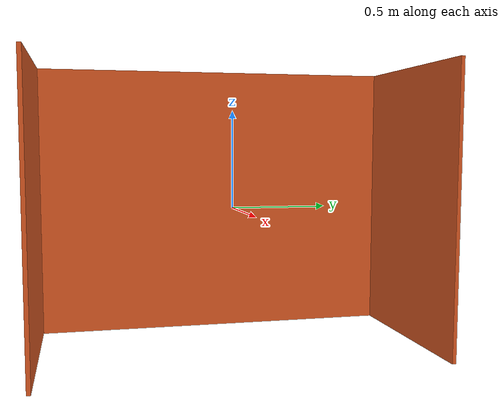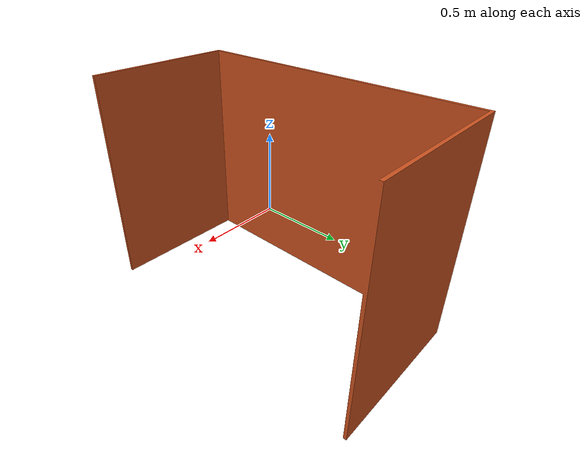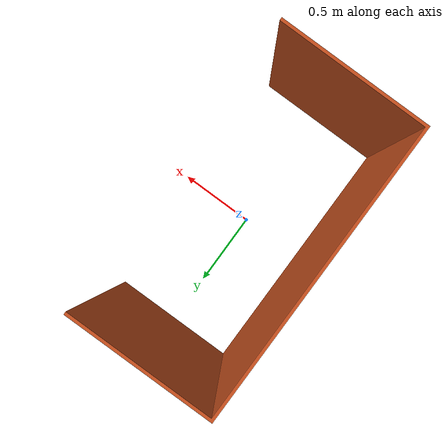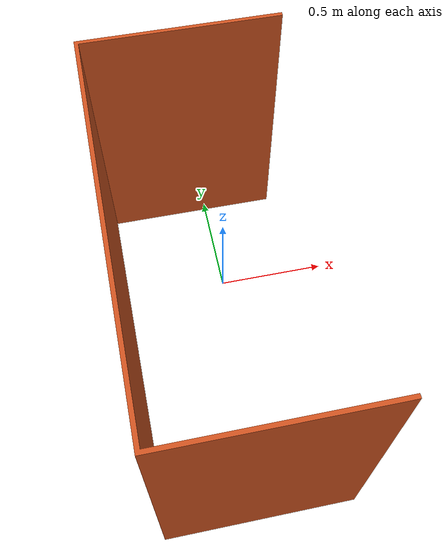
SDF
<?xml version="1.0" ?>
<sdf version="1.5">
  <model name="LaViRIA_barnyard_S">
    <link name="link">
      <inertial>
        <pose>-0.2525 0 0.0 0 0 0</pose>
        <mass>82.8196.318</mass>
        <inertia>
          <ixx>71.8570</ixx>
          <iyy>24.3318</iyy>
          <izz>65.1317</izz>
          <ixy>0</ixy>
          <ixz>0</ixz>
        </inertia>
      </inertial>
      <collision name="collision">
        <geometry>
          <mesh>
            <uri>model://LaViRIA_barnyard/meshes/LaViRIA_barnyard.dae</uri>
          </mesh>
        </geometry>
      </collision>
      <visual name="visual">
        <geometry>
          <mesh>
            <uri>model://LaViRIA_barnyard_S/meshes/LaViRIA_barnyard.dae</uri>
          </mesh>
        </geometry>
        <material>
          <ambient>0.8 0.32 0.12 1.0</ambient>
          <diffuse>0.8 0.32 0.12 1.0</diffuse>
          <specular>0.8 0.32 0.12 1.0</specular>
          <emissive>0.8 0.32 0.12 1.0</emissive>
        </material>
      </visual>
    </link>
  </model>
</sdf>
